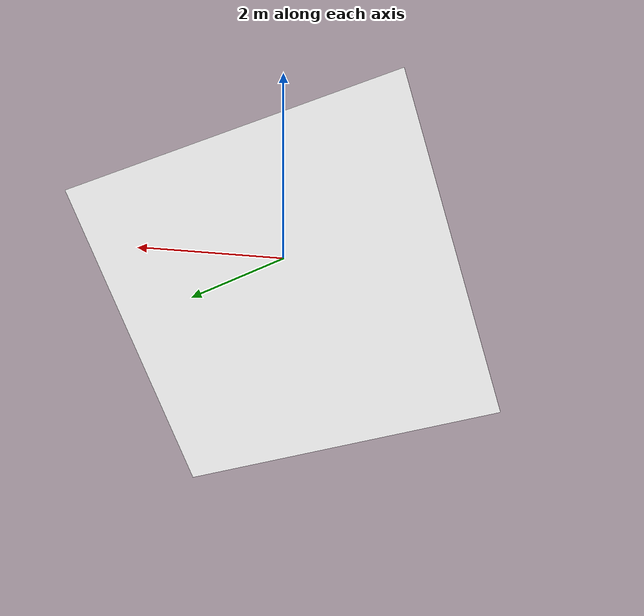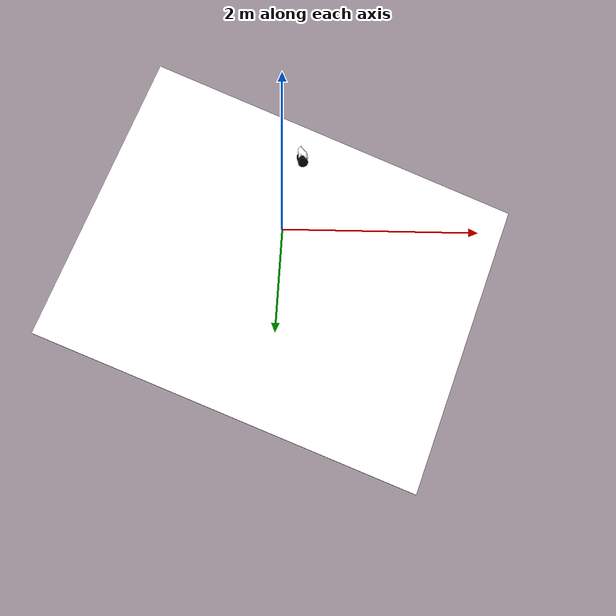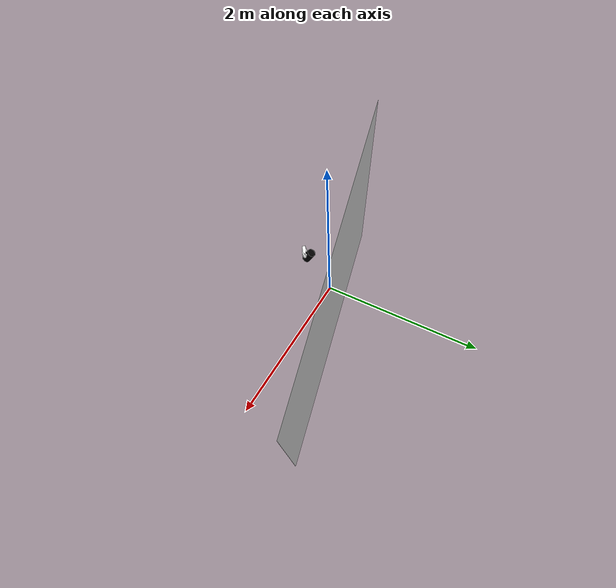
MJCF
<?xml version="1.0" ?>
<mujoco model="002_vhacd">

    <compiler angle="radian" meshdir="" texturedir=""/>

    <size nconmax="100" njmax="500"/>

    <asset>

        <mesh file="/home/haonan/codes/manopth/mujoco_utils/../grasp_models/002_vhacd/002_vhacdcvx_11.stl"
              name="002_vhacdcvx_11"/>

        <mesh file="/home/haonan/codes/manopth/mujoco_utils/../grasp_models/002_vhacd/002_vhacdcvx_5.stl"
              name="002_vhacdcvx_5"/>

        <mesh file="/home/haonan/codes/manopth/mujoco_utils/../grasp_models/002_vhacd/002_vhacdcvx_9.stl"
              name="002_vhacdcvx_9"/>

        <mesh file="/home/haonan/codes/manopth/mujoco_utils/../grasp_models/002_vhacd/002_vhacdcvx_6.stl"
              name="002_vhacdcvx_6"/>

        <mesh file="/home/haonan/codes/manopth/mujoco_utils/../grasp_models/002_vhacd/002_vhacdcvx_0.stl"
              name="002_vhacdcvx_0"/>

        <mesh file="/home/haonan/codes/manopth/mujoco_utils/../grasp_models/002_vhacd/002_vhacdcvx_14.stl"
              name="002_vhacdcvx_14"/>

        <mesh file="/home/haonan/codes/manopth/mujoco_utils/../grasp_models/002_vhacd/002_vhacdcvx_12.stl"
              name="002_vhacdcvx_12"/>

        <mesh file="/home/haonan/codes/manopth/mujoco_utils/../grasp_models/002_vhacd/002_vhacdcvx_8.stl"
              name="002_vhacdcvx_8"/>

        <mesh file="/home/haonan/codes/manopth/mujoco_utils/../grasp_models/002_vhacd/002_vhacdcvx_1.stl"
              name="002_vhacdcvx_1"/>

        <mesh file="/home/haonan/codes/manopth/mujoco_utils/../grasp_models/002_vhacd/002_vhacdcvx_7.stl"
              name="002_vhacdcvx_7"/>

        <mesh file="/home/haonan/codes/manopth/mujoco_utils/../grasp_models/002_vhacd/002_vhacdcvx_2.stl"
              name="002_vhacdcvx_2"/>

        <mesh file="/home/haonan/codes/manopth/mujoco_utils/../grasp_models/002_vhacd/002_vhacdcvx_10.stl"
              name="002_vhacdcvx_10"/>

        <mesh file="/home/haonan/codes/manopth/mujoco_utils/../grasp_models/002_vhacd/002_vhacdcvx_13.stl"
              name="002_vhacdcvx_13"/>

        <mesh file="/home/haonan/codes/manopth/mujoco_utils/../grasp_models/002_vhacd/002_vhacdcvx_3.stl"
              name="002_vhacdcvx_3"/>

        <mesh file="/home/haonan/codes/manopth/mujoco_utils/../grasp_models/002_vhacd/002_vhacdcvx_4.stl"
              name="002_vhacdcvx_4"/>

        <mesh file="/home/haonan/codes/manopth/mujoco_utils/../grasp_models/002_vhacd/002_vhacdcvx_15.stl"
              name="002_vhacdcvx_15"/>

        <mesh file="mujoco_exp/objects/002.stl" name="002_stl"/>
        <mesh file="mano.stl" name="hand"/>
    </asset>

    <worldbody>

        <body euler="2.615809619884087 0.08933050968899638 -1.3629130629403299" name="002_vhacd"
              pos="0.20227359235286713 -0.1638723462820053 0.7513187527656555">

            <joint name="002_vhacd_joint" type="free"/>

            <geom condim="4" density="2500" friction="10" group="3" mesh="002_vhacdcvx_11" name="002_vhacdcvx_11"
                  type="mesh"/>

            <geom condim="4" density="2500" friction="10" group="3" mesh="002_vhacdcvx_5" name="002_vhacdcvx_5"
                  type="mesh"/>

            <geom condim="4" density="2500" friction="10" group="3" mesh="002_vhacdcvx_9" name="002_vhacdcvx_9"
                  type="mesh"/>

            <geom condim="4" density="2500" friction="10" group="3" mesh="002_vhacdcvx_6" name="002_vhacdcvx_6"
                  type="mesh"/>

            <geom condim="4" density="2500" friction="10" group="3" mesh="002_vhacdcvx_0" name="002_vhacdcvx_0"
                  type="mesh"/>

            <geom condim="4" density="2500" friction="10" group="3" mesh="002_vhacdcvx_14" name="002_vhacdcvx_14"
                  type="mesh"/>

            <geom condim="4" density="2500" friction="10" group="3" mesh="002_vhacdcvx_12" name="002_vhacdcvx_12"
                  type="mesh"/>

            <geom condim="4" density="2500" friction="10" group="3" mesh="002_vhacdcvx_8" name="002_vhacdcvx_8"
                  type="mesh"/>

            <geom condim="4" density="2500" friction="10" group="3" mesh="002_vhacdcvx_1" name="002_vhacdcvx_1"
                  type="mesh"/>

            <geom condim="4" density="2500" friction="10" group="3" mesh="002_vhacdcvx_7" name="002_vhacdcvx_7"
                  type="mesh"/>

            <geom condim="4" density="2500" friction="10" group="3" mesh="002_vhacdcvx_2" name="002_vhacdcvx_2"
                  type="mesh"/>

            <geom condim="4" density="2500" friction="10" group="3" mesh="002_vhacdcvx_10" name="002_vhacdcvx_10"
                  type="mesh"/>

            <geom condim="4" density="2500" friction="10" group="3" mesh="002_vhacdcvx_13" name="002_vhacdcvx_13"
                  type="mesh"/>

            <geom condim="4" density="2500" friction="10" group="3" mesh="002_vhacdcvx_3" name="002_vhacdcvx_3"
                  type="mesh"/>

            <geom condim="4" density="2500" friction="10" group="3" mesh="002_vhacdcvx_4" name="002_vhacdcvx_4"
                  type="mesh"/>

            <geom condim="4" density="2500" friction="10" group="3" mesh="002_vhacdcvx_15" name="002_vhacdcvx_15"
                  type="mesh"/>

            <geom condim="4" density="2500" friction="10" group="0" mesh="002_stl" name="002_stl" rgba="0 0 0 1"
                  type="mesh"/>
            <geom condim="4" density="2500" friction="10" group="0" mesh="hand" name="hand" rgba="1 1 1 1" type="mesh"/>
        </body>

        <geom euler="1.4600257125337046 0.23879225001317397 2.8442400366307474" name="floor" pos="0 0 -0.5"
              rgba="1 1 1 1" size="2 2 1" type="plane"/>
        <camera euler="1.4600257125337046 0.23879225001317397 2.8442400366307474" fovy="45" name="camera"
                pos="0.3545380234718323 -1.0083506107330322 0.9894363880157471"/>
        <light pos="0 -2 0"/>
    </worldbody>

</mujoco>
